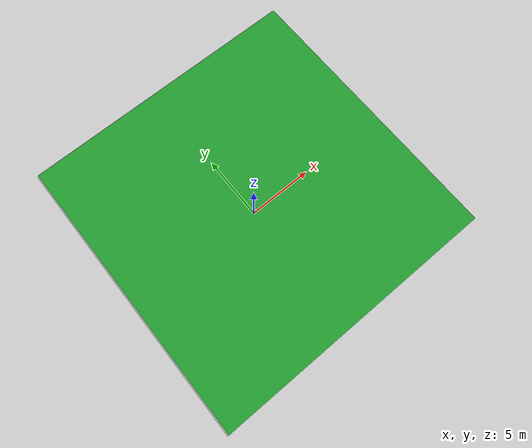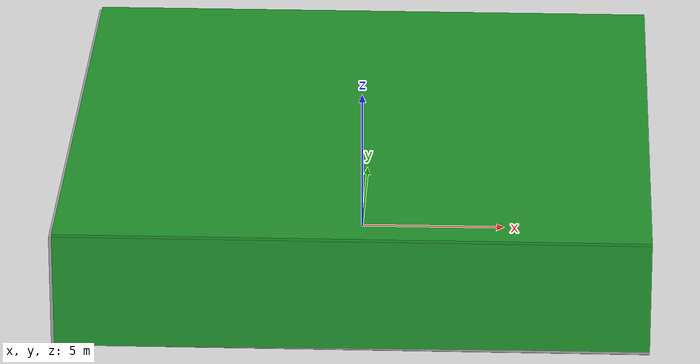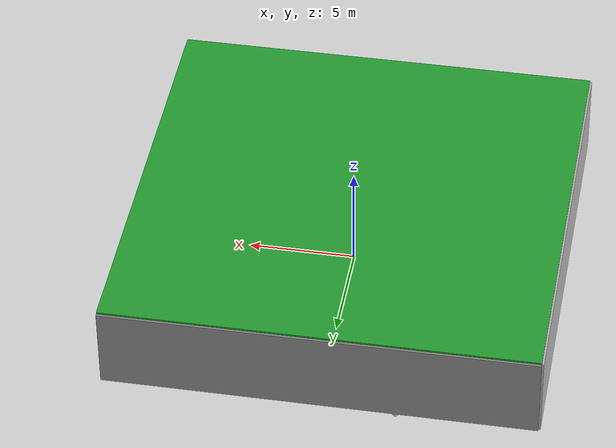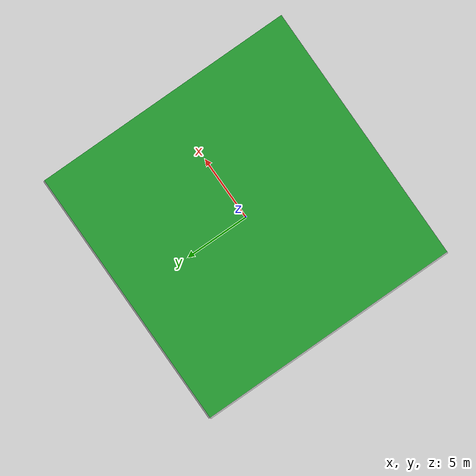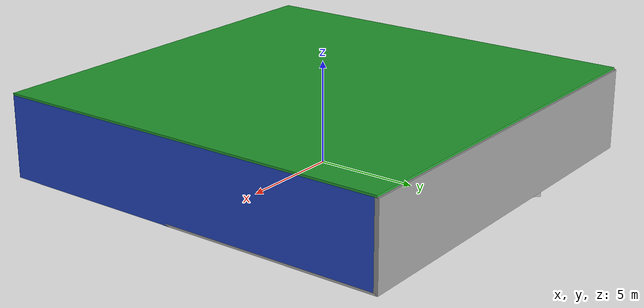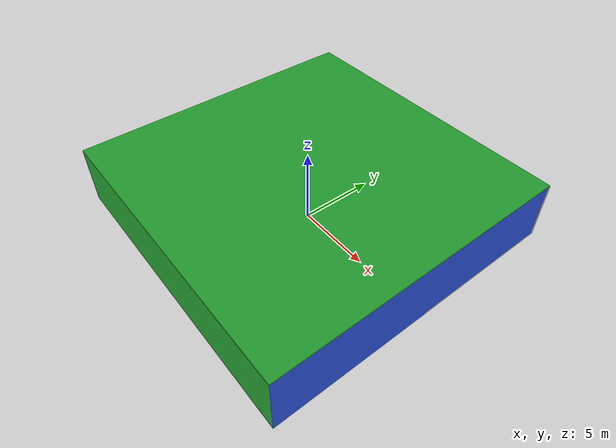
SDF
<sdf version="1.4">
 <world name="default">
  <physics type="ode">
   <max_step_size>0.001</max_step_size>
   <real_time_factor>1</real_time_factor>
   <real_time_update_rate>1000</real_time_update_rate>
   <gravity>0 0 -9.8</gravity>
  </physics>
  <scene><ambient>0.4 0.4 0.4 1</ambient><background>0.7 0.7 0.7 1</background><shadows>1</shadows></scene>
  <model name="Surrounding">
   <static>1</static>
   <link name="Ceiling">
    <collision name="Ceiling_Collision"><geometry><box><size>20 20 0.1</size></box></geometry></collision>
    <visual name="Ceiling_Visual">
     <geometry><box><size>20 20 0.1</size></box></geometry>
     <material>
      <script><uri>file://media/materials/scripts/gazebo.material</uri><name>Gazebo/Green</name></script>
     </material>
    </visual>
    <pose>0 0 4.05 0 0 0</pose>
   </link>
   <link name="Wall_South">
    <collision name="Wall_South_Collision">
     <geometry><box><size>20 0 4</size></box></geometry>
     <pose>0 0 2 0 -0 0</pose>
    </collision>
    <visual name="Wall_South_Visual">
     <pose>0 0 2 0 -0 0</pose>
     <geometry><box><size>20 0 4</size></box></geometry>
     <material>
      <script><uri>file://media/materials/scripts/gazebo.material</uri><name>Gazebo/GreenGlow</name></script>
     </material>
    </visual>
    <velocity_decay><linear>0</linear><angular>0</angular></velocity_decay>
    <pose>0 -10 0 0 -0 0</pose>
   </link>
   <link name="Wall_East">
    <collision name="Wall_21_Collision">
     <geometry><box><size>20 0 4</size></box></geometry>
     <pose>0 0 2 0 -0 0</pose>
    </collision>
    <visual name="Wall_21_Visual">
     <pose>0 0 2 0 -0 0</pose>
     <geometry><box><size>20 0 4</size></box></geometry>
     <material>
      <script><uri>file://media/materials/scripts/gazebo.material</uri><name>Gazebo/BlueLaser</name></script>
     </material>
    </visual>
    <velocity_decay><linear>0</linear><angular>0</angular></velocity_decay>
    <pose>10 0 0 0 -0 1.5708</pose>
   </link>
   <link name="Wall_North">
    <collision name="Wall_22_Collision">
     <geometry><box><size>20 0.2 4</size></box></geometry>
     <pose>0 0 2 0 -0 0</pose>
    </collision>
    <visual name="Wall_22_Visual">
     <pose>0 0 2 0 -0 0</pose>
     <geometry><box><size>20 0.2 4</size></box></geometry>
     <material>
      <script><uri>file://media/materials/scripts/gazebo.material</uri><name>Gazebo/Grey</name></script>
     </material>
    </visual>
    <velocity_decay><linear>0</linear><angular>0</angular></velocity_decay>
    <pose>0 10 0 0 -0 0</pose>
   </link>
   <link name="Wall_West">
    <collision name="Wall_23_Collision">
     <geometry><box><size>20 0.2 4</size></box></geometry>
     <pose>0 0 2 0 -0 0</pose>
    </collision>
    <visual name="Wall_23_Visual">
     <pose>0 0 2 0 -0 0</pose>
     <geometry><box><size>20 0.2 4</size></box></geometry>
     <material>
      <script><uri>file://media/materials/scripts/gazebo.material</uri><name>Gazebo/CloudySky</name></script>
     </material>
    </visual>
    <velocity_decay><linear>0</linear><angular>0</angular></velocity_decay>
    <pose>-10 0 0 0 0 -1.5708</pose>
   </link>
   <link name="Ground_link">
    <collision name="collision">
     <pose>0 0 .05 0 -0 0</pose>
     <geometry><box><size>20 20 0.1</size></box></geometry>
    </collision>
    <visual name="visual">
     <pose>0 0 .05 0 -0 0</pose>
     <geometry><box><size>20 20 0.1</size></box></geometry>
     <material>
      <script><uri>file://media/materials/scripts/gazebo.material</uri><name>Gazebo/LightOn</name></script>
     </material>
    </visual>
   </link>
   <static>1</static>
  </model>
  <spherical_coordinates>
   <surface_model>EARTH_WGS84</surface_model>
   <latitude_deg>0</latitude_deg>
   <longitude_deg>0</longitude_deg>
   <elevation>0</elevation>
   <heading_deg>0</heading_deg>
  </spherical_coordinates>
  <light name="lightball_0" type="diffuse">
   <diffuse>0.8 0.8 0.8 1</diffuse>
   <specular>0.2 0.2 0.2 1</specular>
   <attenuation>
    <range>100</range>
    <constant>0.7</constant>
    <linear>0.01</linear>
    <quadratic>0.001</quadratic>
   </attenuation>
   <direction>-0.5 0.1 -0.9</direction>
   <pose>-7.16301186978 -4.03761011168 2.07796495353 0 0 0</pose>
  </light>
  <light name="lightball_1" type="diffuse">
   <diffuse>0.8 0.8 0.8 1</diffuse>
   <specular>0.2 0.2 0.2 1</specular>
   <attenuation>
    <range>100</range>
    <constant>0.7</constant>
    <linear>0.01</linear>
    <quadratic>0.001</quadratic>
   </attenuation>
   <direction>-0.5 0.1 -0.9</direction>
   <pose>3.05601204479 8.1835476915 3.73711587266 0 0 0</pose>
  </light>
  <light name="lightball_2" type="diffuse">
   <diffuse>0.8 0.8 0.8 1</diffuse>
   <specular>0.2 0.2 0.2 1</specular>
   <attenuation>
    <range>100</range>
    <constant>0.7</constant>
    <linear>0.01</linear>
    <quadratic>0.001</quadratic>
   </attenuation>
   <direction>-0.5 0.1 -0.9</direction>
   <pose>8.30448781903 -2.62361151543 2.10348724214 0 0 0</pose>
  </light>
  <light name="lightball_3" type="diffuse">
   <diffuse>0.8 0.8 0.8 1</diffuse>
   <specular>0.2 0.2 0.2 1</specular>
   <attenuation>
    <range>100</range>
    <constant>0.7</constant>
    <linear>0.01</linear>
    <quadratic>0.001</quadratic>
   </attenuation>
   <direction>-0.5 0.1 -0.9</direction>
   <pose>-8.6534272276 -4.16646407991 1.37912344699 0 0 0</pose>
  </light>
  <light name="lightball_4" type="diffuse">
   <diffuse>0.8 0.8 0.8 1</diffuse>
   <specular>0.2 0.2 0.2 1</specular>
   <attenuation>
    <range>100</range>
    <constant>0.7</constant>
    <linear>0.01</linear>
    <quadratic>0.001</quadratic>
   </attenuation>
   <direction>-0.5 0.1 -0.9</direction>
   <pose>9.4193263823 9.97361224549 2.94252513225 0 0 0</pose>
  </light>
  <light name="lightball_5" type="diffuse">
   <diffuse>0.8 0.8 0.8 1</diffuse>
   <specular>0.2 0.2 0.2 1</specular>
   <attenuation>
    <range>100</range>
    <constant>0.7</constant>
    <linear>0.01</linear>
    <quadratic>0.001</quadratic>
   </attenuation>
   <direction>-0.5 0.1 -0.9</direction>
   <pose>3.85127667903 1.7164574835 2.88207237638 0 0 0</pose>
  </light>
  <light name="lightball_6" type="diffuse">
   <diffuse>0.8 0.8 0.8 1</diffuse>
   <specular>0.2 0.2 0.2 1</specular>
   <attenuation>
    <range>100</range>
    <constant>0.7</constant>
    <linear>0.01</linear>
    <quadratic>0.001</quadratic>
   </attenuation>
   <direction>-0.5 0.1 -0.9</direction>
   <pose>5.71398510788 -3.51629849894 3.02859643735 0 0 0</pose>
  </light>
  <include><uri>model://cabinet</uri><pose>-7.03686165095 7.67740331814 0 0 0 1.20271793483</pose></include>
  <include>
   <uri>model://construction_cone</uri>
   <pose>-3.97657618702 -7.15548468109 0 0 0 1.18532685009</pose>
  </include>
  <include>
   <uri>model://textured_shapes</uri>
   <pose>-4.45923810073 7.94706751742 0 0 0 2.4166407988</pose>
  </include>
  <include><uri>model://table</uri><pose>1.66173718311 1.45041491813 0 0 0 3.03469889891</pose></include>
  <include>
   <uri>model://construction_cone</uri>
   <pose>4.97426369379 2.13827839618 0 0 0 0.404482593882</pose>
  </include>
  <include><uri>model://cabinet</uri><pose>7.89422014527 -7.67509263335 0 0 0 2.85176828004</pose></include>
 </world>
</sdf>

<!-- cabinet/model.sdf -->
<sdf version="1.5">
  <model name="cabinet">
    <static>true</static>
    <link name="cabinet_bottom_plate">
      <inertial>
        <pose>0 0 -1 0 0 0</pose>
        <inertia>
          <ixx>2.050000</ixx>
          <ixy>0</ixy>
          <ixz>0</ixz>
          <iyy>2.050000</iyy>
          <iyz>0</iyz>
          <izz>2.050000</izz>
        </inertia>
        <mass>25.000000</mass>
      </inertial>
      <collision name="cabinet_bottom_plate_geom">
        <pose>0 0 0.010000 0 0 0</pose>
        <geometry>
          <box>
            <size>0.450000 0.450000 0.020000</size>
          </box>
        </geometry>
      </collision>
      <visual name="cabinet_bottom_plate_geom_visual">
        <pose>0 0 0.010000 0 0 0</pose>
        <geometry>
          <box>
            <size>0.450000 0.450000 0.020000</size>
          </box>
        </geometry>
        <material>
          <script>
            <uri>model://media/materials/scripts/gazebo.material</uri>
            <name>Gazebo/Wood</name>
          </script>
        </material>
      </visual>
      <collision name="cabinet_bottom_plate_geom_cabinet_back_plate">
        <pose>0.235000 0 0.510000 0 0 0</pose>
        <geometry>
          <box>
            <size>0.020000 0.450000 1.020000</size>
          </box>
        </geometry>
      </collision>
      <visual name="cabinet_bottom_plate_geom_cabinet_back_plate_visual">
        <pose>0.235000 0 0.510000 0 0 0</pose>
        <geometry>
          <box>
            <size>0.020000 0.450000 1.020000</size>
          </box>
        </geometry>
        <material>
          <script>
            <uri>model://media/materials/scripts/gazebo.material</uri>
            <name>Gazebo/Wood</name>
          </script>
        </material>
      </visual>
      <collision name="cabinet_bottom_plate_geom_cabinet_left_plate">
        <pose>0 0.235000 0.510000 0 0 0</pose>
        <geometry>
          <box>
            <size>0.450000 0.020000 1.020000</size>
          </box>
        </geometry>
      </collision>
      <visual name="cabinet_bottom_plate_geom_cabinet_left_plate_visual">
        <pose>0 0.235000 0.510000 0 0 0</pose>
        <geometry>
          <box>
            <size>0.450000 0.020000 1.020000</size>
          </box>
        </geometry>
        <material>
          <script>
            <uri>model://media/materials/scripts/gazebo.material</uri>
            <name>Gazebo/Wood</name>
          </script>
        </material>
      </visual>
      <collision name="cabinet_bottom_plate_geom_cabinet_middle_plate">
        <pose>0 0 0.510000 0 0 0</pose>
        <geometry>
          <box>
            <size>0.450000 0.450000 0.020000</size>
          </box>
        </geometry>
      </collision>
      <visual name="cabinet_bottom_plate_geom_cabinet_middle_plate_visual">
        <pose>0 0 0.510000 0 0 0</pose>
        <geometry>
          <box>
            <size>0.450000 0.450000 0.020000</size>
          </box>
        </geometry>
        <material>
          <script>
            <uri>model://media/materials/scripts/gazebo.material</uri>
            <name>Gazebo/Wood</name>
          </script>
        </material>
      </visual>
      <collision name="cabinet_bottom_plate_geom_cabinet_right_plate">
        <pose>0 -0.235000 0.510000 0 0 0</pose>
        <geometry>
          <box>
            <size>0.450000 0.020000 1.020000</size>
          </box>
        </geometry>
      </collision>
      <visual name="cabinet_bottom_plate_geom_cabinet_right_plate_visual">
        <pose>0 -0.235000 0.510000 0 0 0</pose>
        <geometry>
          <box>
            <size>0.450000 0.020000 1.020000</size>
          </box>
        </geometry>
        <material>
          <script>
            <uri>model://media/materials/scripts/gazebo.material</uri>
            <name>Gazebo/Wood</name>
          </script>
        </material>
      </visual>
      <collision name="cabinet_bottom_plate_geom_cabinet_top_plate">
        <pose>0 0 1.010000 0 0 0</pose>
        <geometry>
          <box>
            <size>0.450000 0.450000 0.020000</size>
          </box>
        </geometry>
      </collision>
      <visual name="cabinet_bottom_plate_geom_cabinet_top_plate_visual">
        <pose>0 0 1.010000 0 0 0</pose>
        <geometry>
          <box>
            <size>0.450000 0.450000 0.020000</size>
          </box>
        </geometry>
        <material>
          <script>
            <uri>model://media/materials/scripts/gazebo.material</uri>
            <name>Gazebo/Wood</name>
          </script>
        </material>
      </visual>
    </link>
  </model>
</sdf>

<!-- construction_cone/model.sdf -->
<sdf version="1.5">
  <model name="Construction Cone">
    <link name="link">
      <collision name="collision">
        <geometry>
          <mesh>
            <scale>10 10 10</scale>
            <uri>file://isr-testbed/construction_cone/meshes/construction_cone.dae</uri>
          </mesh>
        </geometry>
      </collision>
      <visual name="visual">
        <geometry>
          <mesh>
            <scale>10 10 10</scale>
            <uri>file://isr-testbed/construction_cone/meshes/construction_cone.dae</uri>
          </mesh>
        </geometry>
      </visual>
    </link>
  </model>
</sdf>

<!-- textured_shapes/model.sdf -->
<sdf version="1.6">
  <model name="textured_shapes">
    <pose>0 0 0.5 0 0 0</pose>
    <link name="box">
      <pose>0 -1.5 0 0 0 0</pose>
      <collision name="collision">
        <geometry>
          <box>
            <size>1 1 1</size>
          </box>
        </geometry>
      </collision>
      <visual name="visual">
        <geometry>
          <box>
            <size>1 1 1</size>
          </box>
        </geometry>
        <material>
          <script>
            <uri>model://../model_source/models/textured_shapes/materials/scripts</uri>
            <uri>model://../model_source/models/textured_shapes/materials/textures</uri>
            <name>TexturedShape/Squares</name>
          </script>
        </material>
      </visual>
    </link>
    <link name="sphere">
      <collision name="collision">
        <geometry>
          <sphere>
            <radius>0.5</radius>
          </sphere>
        </geometry>
      </collision>
      <visual name="visual">
        <geometry>
          <sphere>
            <radius>0.5</radius>
          </sphere>
        </geometry>
        <material>
          <script>
            <uri>model://../model_source/models/textured_shapes/materials/scripts</uri>
            <uri>model://../model_source/models/textured_shapes/materials/textures</uri>
            <name>TexturedShape/Squares</name>
          </script>
        </material>
      </visual>
    </link>
    <link name="cylinder">
      <pose>0 1.5 0 0 0 0</pose>
      <collision name="collision">
        <geometry>
          <cylinder>
            <radius>0.5</radius>
            <length>1</length>
          </cylinder>
        </geometry>
      </collision>
      <visual name="visual">
        <geometry>
          <cylinder>
            <radius>0.5</radius>
            <length>1</length>
          </cylinder>
        </geometry>
        <material>
          <script>
            <uri>model://../model_source/models/textured_shapes/materials/scripts</uri>
            <uri>model://../model_source/models/textured_shapes/materials/textures</uri>
            <name>TexturedShape/Squares</name>
          </script>
        </material>
      </visual>
    </link>
  </model>
</sdf>

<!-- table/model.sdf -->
<sdf version="1.5">
  <model name="table">
    <static>true</static>
    <link name="link">
      <collision name="surface">
        <pose>0 0 1.0 0 0 0</pose>
        <geometry>
          <box>
            <size>1.5 0.8 0.03</size>
          </box>
        </geometry>
        <surface>
          <friction>
            <ode>
              <mu>0.6</mu>
              <mu2>0.6</mu2>
            </ode>
          </friction>
        </surface>
      </collision>
      <visual name="visual1">
        <pose>0 0 1.0 0 0 0</pose>
        <geometry>
          <box>
            <size>1.5 0.8 0.03</size>
          </box>
        </geometry>
        <material>
          <script>
            <uri>model://media/materials/scripts/gazebo.material</uri>
            <name>Gazebo/Wood</name>
          </script>
        </material>
      </visual>
      <collision name="front_left_leg">
        <pose>0.68 0.38 0.5 0 0 0</pose>
        <geometry>
          <cylinder>
            <radius>0.02</radius>
            <length>1.0</length>
          </cylinder>
        </geometry>
      </collision>
      <visual name="front_left_leg">
        <pose>0.68 0.38 0.5 0 0 0</pose>
        <geometry>
          <cylinder>
            <radius>0.02</radius>
            <length>1.0</length>
          </cylinder>
        </geometry>
        <material>
          <script>
            <uri>model://media/materials/scripts/gazebo.material</uri>
            <name>Gazebo/Grey</name>
          </script>
        </material>
      </visual>
      <collision name="front_right_leg">
        <pose>0.68 -0.38 0.5 0 0 0</pose>
        <geometry>
          <cylinder>
            <radius>0.02</radius>
            <length>1.0</length>
          </cylinder>
        </geometry>
      </collision>
      <visual name="front_right_leg">
        <pose>0.68 -0.38 0.5 0 0 0</pose>
        <geometry>
          <cylinder>
            <radius>0.02</radius>
            <length>1.0</length>
          </cylinder>
        </geometry>
        <material>
          <script>
            <uri>model://media/materials/scripts/gazebo.material</uri>
            <name>Gazebo/Grey</name>
          </script>
        </material>
      </visual>
      <collision name="back_right_leg">
        <pose>-0.68 -0.38 0.5 0 0 0</pose>
        <geometry>
          <cylinder>
            <radius>0.02</radius>
            <length>1.0</length>
          </cylinder>
        </geometry>
      </collision>
      <visual name="back_right_leg">
        <pose>-0.68 -0.38 0.5 0 0 0</pose>
        <geometry>
          <cylinder>
            <radius>0.02</radius>
            <length>1.0</length>
          </cylinder>
        </geometry>
        <material>
          <script>
            <uri>model://media/materials/scripts/gazebo.material</uri>
            <name>Gazebo/Grey</name>
          </script>
        </material>
      </visual>
      <collision name="back_left_leg">
        <pose>-0.68 0.38 0.5 0 0 0</pose>
        <geometry>
          <cylinder>
            <radius>0.02</radius>
            <length>1.0</length>
          </cylinder>
        </geometry>
      </collision>
      <visual name="back_left_leg">
        <pose>-0.68 0.38 0.5 0 0 0</pose>
        <geometry>
          <cylinder>
            <radius>0.02</radius>
            <length>1.0</length>
          </cylinder>
        </geometry>
        <material>
          <script>
            <uri>model://media/materials/scripts/gazebo.material</uri>
            <name>Gazebo/Grey</name>
          </script>
        </material>
      </visual>
    </link>
  </model>
</sdf>
